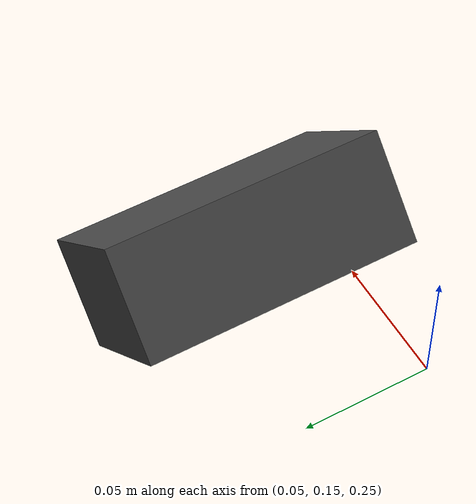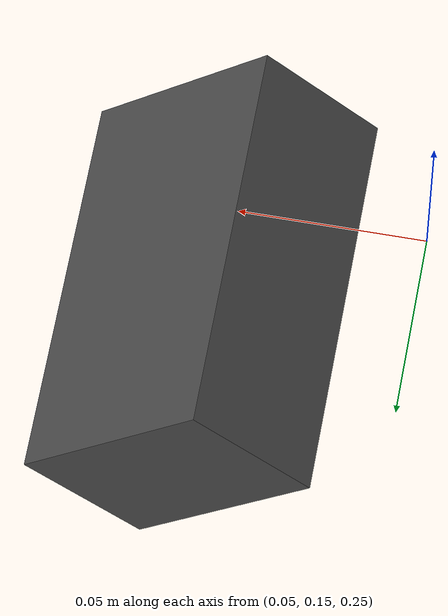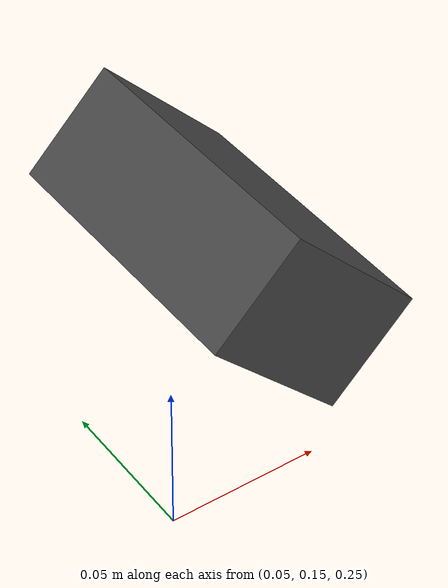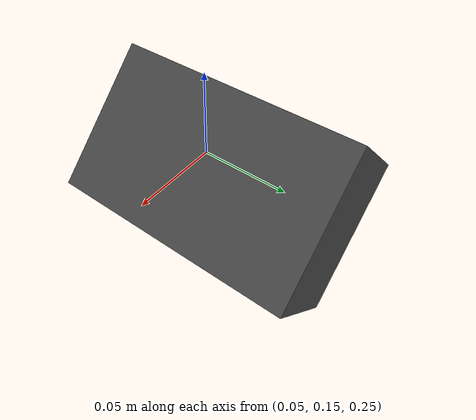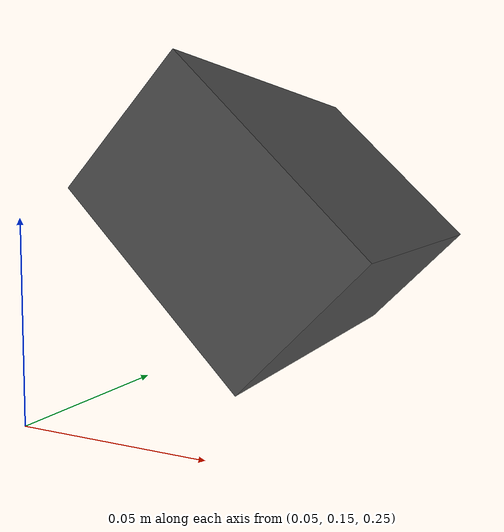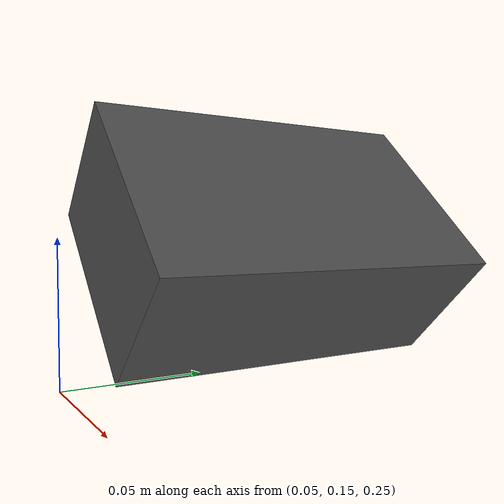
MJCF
<?xml version="1.0"?>
<mujoco model="d435i_cam">

  <!-- найдёт OBJ-файлы там же, где основная сцена -->
  <compiler meshdir="assets" angle="radian"/>

  <!-- off-screen буфер 640×480 под RGB-D  -->
  <visual>
    <global offwidth="640" offheight="480"/>
    <quality shadowsize="4096"/>
  </visual>

  <asset>
    <!-- ▸ материалы корпуса (имен уникальны) -->
    <material name="cam_black"   rgba="0.07 0.07 0.07 1"/>
    <material name="cam_gray"    rgba="0.30 0.30 0.30 1"/>
    <material name="cam_emitter" rgba="0.29 0.67 0.33 1"/>
    <material name="cam_lens"    rgba="0.04 0.04 0.04 1"/>
    <material name="cam_rim"     rgba="0.80 0.81 0.80 1"/>
    <material name="cam_white"   rgba="1 1 1 1"/>
    <material name="cam_rgb"     rgba="0.09 0.003 0.009 1"/>

    <!-- ▸ меши камеры  (из menagerie/RealSense) -->
    <mesh file="d435i_0.obj"/><mesh file="d435i_1.obj"/>
    <mesh file="d435i_2.obj"/><mesh file="d435i_3.obj"/>
    <mesh file="d435i_4.obj"/><mesh file="d435i_5.obj"/>
    <mesh file="d435i_6.obj"/><mesh file="d435i_7.obj"/>
    <mesh file="d435i_8.obj"/>
  </asset>

  <worldbody>
    <body name="d435" pos="0.1 0.2 0.3" quat="0 0.38268343 0 0.92387953">
      <geom type="box" size="0.03 0.05 0.02"
            rgba="0.3 0.3 0.3 1" contype="0" conaffinity="0" group="2"/>
      <camera name="rs_d435" quat="0.5 0.5 0.5 0.5" fovy="58"/>
    </body>
  </worldbody>
</mujoco>
